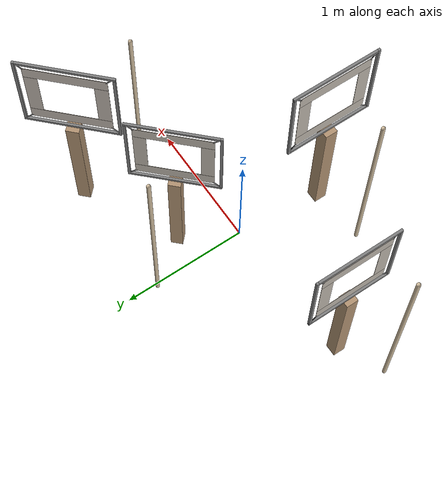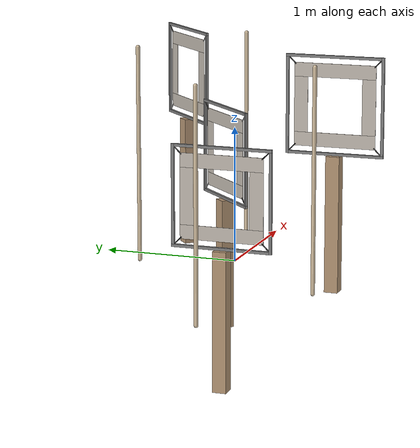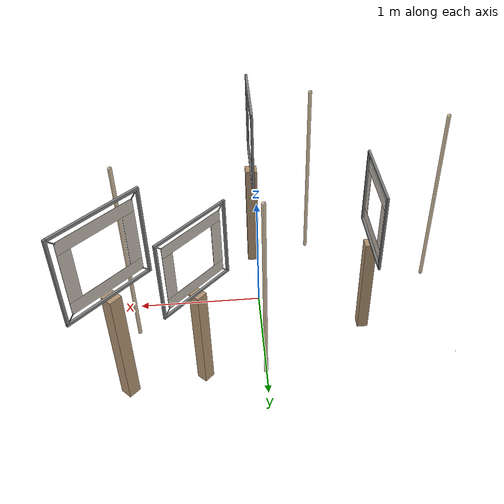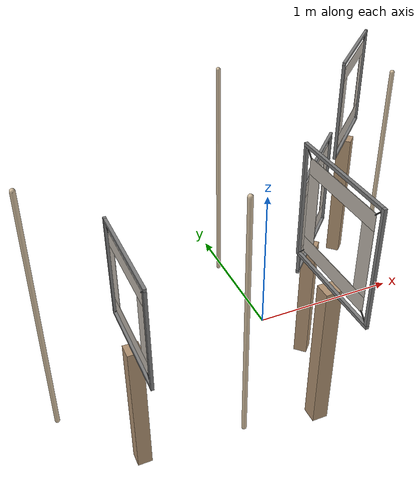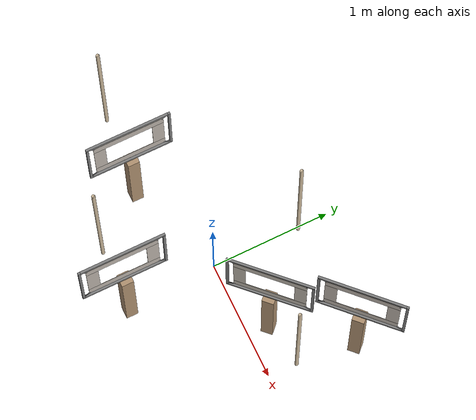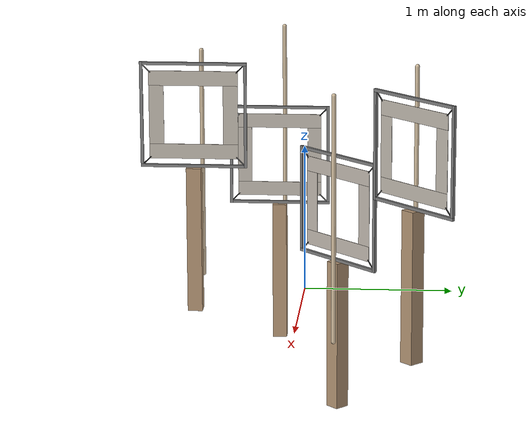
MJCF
<mujoco model="lsy-level0">
  <compiler angle="degree" />
  <asset>
    <texture name="gate_texture_top" type="2d" file="textures/gate_top.png" />
    <texture name="gate_texture_bottom" type="2d" file="textures/gate_bottom.png" />
    <texture name="gate_texture_left" type="2d" file="textures/gate_left.png" />
    <texture name="gate_texture_right" type="2d" file="textures/gate_right.png" />
    <material name="gate_mat_top" texture="gate_texture_top" specular="0.5" shininess="0.3" reflectance="0.0" emission="0.2" />
    <material name="gate_mat_bottom" texture="gate_texture_bottom" specular="0.5" shininess="0.3" reflectance="0.0" emission="0.2" />
    <material name="gate_mat_left" texture="gate_texture_left" specular="0.5" shininess="0.3" reflectance="0.0" emission="0.2" />
    <material name="gate_mat_right" texture="gate_texture_right" specular="0.5" shininess="0.3" reflectance="0.0" emission="0.2" />
    <material name="frame_mat" rgba="0.5 0.5 0.5 1" specular="0.4" shininess="0.4" reflectance="0.5" />
    <material name="rope_mat" rgba="0.1 0.1 0.1 1" specular="0.0" shininess="0.0" reflectance="0.0" />
    <material name="stand_mat" rgba="0.7 0.58 0.45 1" specular="0.0" shininess="0.0" reflectance="0.0" />
  </asset>
  <custom>
    <numeric name="gate_order" data="1 2 3 4 2" />
    <numeric name="reference_speed" data="0.5" />
    <numeric name="reference_spacing" data="0.3" />
    <numeric name="reference_detours" data="3 -1.3 -1.0 1.2 3 -0.55 -1.0 1.2" />
    <numeric name="world_low" data="-2.5 -1.5 -0.001" />
    <numeric name="world_high" data="2.5 1.5 2" />
    <numeric name="initial_velocity" data="0 0 0" />
    <numeric name="initial_angular_velocity" data="0 0 0" />
  </custom>
  <worldbody>
    <body name="gate:0" pos="0.5 0.25 0.69999999999999996" quat="0.92490905985731309 0 0 -0.38018841512316143" mocap="true">
      <geom name="front_top:0" type="box" size=".3 .05 5e-4" pos="-1e-3 0.0 0.25" euler="-90 -90 180" material="gate_mat_top" contype="0" conaffinity="0" />
      <geom name="front_bottom:0" type="box" size=".3 .05 5e-4" pos="-1e-3 0.0 -0.25" euler="-90 -90 180" material="gate_mat_bottom" contype="0" conaffinity="0" />
      <geom name="front_left:0" type="box" size=".05 .2 5e-4" pos="-1e-3 -0.25 0" euler="90 -90 180" material="gate_mat_left" contype="0" conaffinity="0" />
      <geom name="front_right:0" type="box" size=".05 .2 5e-4" pos="-1e-3 0.25 0" euler="90 -90 180" material="gate_mat_right" contype="0" conaffinity="0" />
      <geom name="back_top:0" type="box" size=".3 .05 5e-4" pos="1e-3 0.0 0.25" euler="90 90 0" material="gate_mat_top" contype="0" conaffinity="0" />
      <geom name="back_bottom:0" type="box" size=".3 .05 5e-4" pos="1e-3 0.0 -0.25" euler="90 90 0" material="gate_mat_bottom" contype="0" conaffinity="0" />
      <geom name="back_left:0" type="box" size=".05 .2 5e-4" pos="1e-3 -0.25 0" euler="90 90 0" material="gate_mat_left" contype="0" conaffinity="0" />
      <geom name="back_right:0" type="box" size=".05 .2 5e-4" pos="1e-3 0.25 0" euler="90 90 0" material="gate_mat_right" contype="0" conaffinity="0" />
      <geom name="frame_top:0" type="box" size=".35 .01 .01" pos="0.0 0.01 0.35" euler="90 90 0" material="frame_mat" contype="0" conaffinity="0" />
      <geom name="frame_bottom:0" type="box" size=".35 .01 .01" pos="0.0 -0.01 -0.35" euler="90 90 0" material="frame_mat" contype="0" conaffinity="0" />
      <geom name="frame_left:0" type="box" size=".01 .35 .01" pos="0.0 -0.35 0.01" euler="90 90 0" material="frame_mat" contype="0" conaffinity="0" />
      <geom name="frame_right:0" type="box" size=".01 .35 .01" pos="0.0 0.35 -0.01" euler="90 90 0" material="frame_mat" contype="0" conaffinity="0" />
      <geom name="rope_top_left:0" type="capsule" fromto="0.0 -0.34 0.34  0.0 -0.29 0.29" size="0.004" material="rope_mat" contype="0" conaffinity="0" />
      <geom name="rope_top_right:0" type="capsule" fromto="0.0 0.34 0.34   0.0 0.29 0.29" size="0.004" material="rope_mat" contype="0" conaffinity="0" />
      <geom name="rope_bottom_left:0" type="capsule" fromto="0.0 -0.34 -0.34  0.0 -0.29 -0.29" size="0.004" material="rope_mat" contype="0" conaffinity="0" />
      <geom name="rope_bottom_right:0" type="capsule" fromto="0.0 0.34 -0.34   0.0 0.29 -0.29" size="0.004" material="rope_mat" contype="0" conaffinity="0" />
      <geom name="gate_stand:0" type="box" size="0.05 0.05 0.5" pos="0 0 -0.86" material="stand_mat" contype="1" conaffinity="1" />
      <geom name="col_top:0" type="box" pos="0 0 0.28" size="0.01 0.36 0.08" rgba="1 1 1 0" contype="1" conaffinity="1" />
      <geom name="col_bottom:0" type="box" pos="0 0 -0.28" size="0.01 0.36 0.08" rgba="1 1 1 0" contype="1" conaffinity="1" />
      <geom name="col_left:0" type="box" pos="0 -0.28 0" size="0.01 0.08 0.36" rgba="1 1 1 0" contype="1" conaffinity="1" />
      <geom name="col_right:0" type="box" pos="0 0.28 0" size="0.01 0.08 0.36" rgba="1 1 1 0" contype="1" conaffinity="1" />
    </body>
    <body name="gate:1" pos="1.05 0.75 1.2" quat="0.38554307361593598 0 0 0.92268983867103305" mocap="true">
      <geom name="front_top:1" type="box" size=".3 .05 5e-4" pos="-1e-3 0.0 0.25" euler="-90 -90 180" material="gate_mat_top" contype="0" conaffinity="0" />
      <geom name="front_bottom:1" type="box" size=".3 .05 5e-4" pos="-1e-3 0.0 -0.25" euler="-90 -90 180" material="gate_mat_bottom" contype="0" conaffinity="0" />
      <geom name="front_left:1" type="box" size=".05 .2 5e-4" pos="-1e-3 -0.25 0" euler="90 -90 180" material="gate_mat_left" contype="0" conaffinity="0" />
      <geom name="front_right:1" type="box" size=".05 .2 5e-4" pos="-1e-3 0.25 0" euler="90 -90 180" material="gate_mat_right" contype="0" conaffinity="0" />
      <geom name="back_top:1" type="box" size=".3 .05 5e-4" pos="1e-3 0.0 0.25" euler="90 90 0" material="gate_mat_top" contype="0" conaffinity="0" />
      <geom name="back_bottom:1" type="box" size=".3 .05 5e-4" pos="1e-3 0.0 -0.25" euler="90 90 0" material="gate_mat_bottom" contype="0" conaffinity="0" />
      <geom name="back_left:1" type="box" size=".05 .2 5e-4" pos="1e-3 -0.25 0" euler="90 90 0" material="gate_mat_left" contype="0" conaffinity="0" />
      <geom name="back_right:1" type="box" size=".05 .2 5e-4" pos="1e-3 0.25 0" euler="90 90 0" material="gate_mat_right" contype="0" conaffinity="0" />
      <geom name="frame_top:1" type="box" size=".35 .01 .01" pos="0.0 0.01 0.35" euler="90 90 0" material="frame_mat" contype="0" conaffinity="0" />
      <geom name="frame_bottom:1" type="box" size=".35 .01 .01" pos="0.0 -0.01 -0.35" euler="90 90 0" material="frame_mat" contype="0" conaffinity="0" />
      <geom name="frame_left:1" type="box" size=".01 .35 .01" pos="0.0 -0.35 0.01" euler="90 90 0" material="frame_mat" contype="0" conaffinity="0" />
      <geom name="frame_right:1" type="box" size=".01 .35 .01" pos="0.0 0.35 -0.01" euler="90 90 0" material="frame_mat" contype="0" conaffinity="0" />
      <geom name="rope_top_left:1" type="capsule" fromto="0.0 -0.34 0.34  0.0 -0.29 0.29" size="0.004" material="rope_mat" contype="0" conaffinity="0" />
      <geom name="rope_top_right:1" type="capsule" fromto="0.0 0.34 0.34   0.0 0.29 0.29" size="0.004" material="rope_mat" contype="0" conaffinity="0" />
      <geom name="rope_bottom_left:1" type="capsule" fromto="0.0 -0.34 -0.34  0.0 -0.29 -0.29" size="0.004" material="rope_mat" contype="0" conaffinity="0" />
      <geom name="rope_bottom_right:1" type="capsule" fromto="0.0 0.34 -0.34   0.0 0.29 -0.29" size="0.004" material="rope_mat" contype="0" conaffinity="0" />
      <geom name="gate_stand:1" type="box" size="0.05 0.05 0.5" pos="0 0 -0.86" material="stand_mat" contype="1" conaffinity="1" />
      <geom name="col_top:1" type="box" pos="0 0 0.28" size="0.01 0.36 0.08" rgba="1 1 1 0" contype="1" conaffinity="1" />
      <geom name="col_bottom:1" type="box" pos="0 0 -0.28" size="0.01 0.36 0.08" rgba="1 1 1 0" contype="1" conaffinity="1" />
      <geom name="col_left:1" type="box" pos="0 -0.28 0" size="0.01 0.08 0.36" rgba="1 1 1 0" contype="1" conaffinity="1" />
      <geom name="col_right:1" type="box" pos="0 0.28 0" size="0.01 0.08 0.36" rgba="1 1 1 0" contype="1" conaffinity="1" />
    </body>
    <body name="gate:2" pos="-1 -0.25 0.69999999999999996" quat="0.00079632671073326335 0 0 0.99999968293183461" mocap="true">
      <geom name="front_top:2" type="box" size=".3 .05 5e-4" pos="-1e-3 0.0 0.25" euler="-90 -90 180" material="gate_mat_top" contype="0" conaffinity="0" />
      <geom name="front_bottom:2" type="box" size=".3 .05 5e-4" pos="-1e-3 0.0 -0.25" euler="-90 -90 180" material="gate_mat_bottom" contype="0" conaffinity="0" />
      <geom name="front_left:2" type="box" size=".05 .2 5e-4" pos="-1e-3 -0.25 0" euler="90 -90 180" material="gate_mat_left" contype="0" conaffinity="0" />
      <geom name="front_right:2" type="box" size=".05 .2 5e-4" pos="-1e-3 0.25 0" euler="90 -90 180" material="gate_mat_right" contype="0" conaffinity="0" />
      <geom name="back_top:2" type="box" size=".3 .05 5e-4" pos="1e-3 0.0 0.25" euler="90 90 0" material="gate_mat_top" contype="0" conaffinity="0" />
      <geom name="back_bottom:2" type="box" size=".3 .05 5e-4" pos="1e-3 0.0 -0.25" euler="90 90 0" material="gate_mat_bottom" contype="0" conaffinity="0" />
      <geom name="back_left:2" type="box" size=".05 .2 5e-4" pos="1e-3 -0.25 0" euler="90 90 0" material="gate_mat_left" contype="0" conaffinity="0" />
      <geom name="back_right:2" type="box" size=".05 .2 5e-4" pos="1e-3 0.25 0" euler="90 90 0" material="gate_mat_right" contype="0" conaffinity="0" />
      <geom name="frame_top:2" type="box" size=".35 .01 .01" pos="0.0 0.01 0.35" euler="90 90 0" material="frame_mat" contype="0" conaffinity="0" />
      <geom name="frame_bottom:2" type="box" size=".35 .01 .01" pos="0.0 -0.01 -0.35" euler="90 90 0" material="frame_mat" contype="0" conaffinity="0" />
      <geom name="frame_left:2" type="box" size=".01 .35 .01" pos="0.0 -0.35 0.01" euler="90 90 0" material="frame_mat" contype="0" conaffinity="0" />
      <geom name="frame_right:2" type="box" size=".01 .35 .01" pos="0.0 0.35 -0.01" euler="90 90 0" material="frame_mat" contype="0" conaffinity="0" />
      <geom name="rope_top_left:2" type="capsule" fromto="0.0 -0.34 0.34  0.0 -0.29 0.29" size="0.004" material="rope_mat" contype="0" conaffinity="0" />
      <geom name="rope_top_right:2" type="capsule" fromto="0.0 0.34 0.34   0.0 0.29 0.29" size="0.004" material="rope_mat" contype="0" conaffinity="0" />
      <geom name="rope_bottom_left:2" type="capsule" fromto="0.0 -0.34 -0.34  0.0 -0.29 -0.29" size="0.004" material="rope_mat" contype="0" conaffinity="0" />
      <geom name="rope_bottom_right:2" type="capsule" fromto="0.0 0.34 -0.34   0.0 0.29 -0.29" size="0.004" material="rope_mat" contype="0" conaffinity="0" />
      <geom name="gate_stand:2" type="box" size="0.05 0.05 0.5" pos="0 0 -0.86" material="stand_mat" contype="1" conaffinity="1" />
      <geom name="col_top:2" type="box" pos="0 0 0.28" size="0.01 0.36 0.08" rgba="1 1 1 0" contype="1" conaffinity="1" />
      <geom name="col_bottom:2" type="box" pos="0 0 -0.28" size="0.01 0.36 0.08" rgba="1 1 1 0" contype="1" conaffinity="1" />
      <geom name="col_left:2" type="box" pos="0 -0.28 0" size="0.01 0.08 0.36" rgba="1 1 1 0" contype="1" conaffinity="1" />
      <geom name="col_right:2" type="box" pos="0 0.28 0" size="0.01 0.08 0.36" rgba="1 1 1 0" contype="1" conaffinity="1" />
    </body>
    <body name="gate:3" pos="0 -0.75 1.2" quat="1 0 0 0" mocap="true">
      <geom name="front_top:3" type="box" size=".3 .05 5e-4" pos="-1e-3 0.0 0.25" euler="-90 -90 180" material="gate_mat_top" contype="0" conaffinity="0" />
      <geom name="front_bottom:3" type="box" size=".3 .05 5e-4" pos="-1e-3 0.0 -0.25" euler="-90 -90 180" material="gate_mat_bottom" contype="0" conaffinity="0" />
      <geom name="front_left:3" type="box" size=".05 .2 5e-4" pos="-1e-3 -0.25 0" euler="90 -90 180" material="gate_mat_left" contype="0" conaffinity="0" />
      <geom name="front_right:3" type="box" size=".05 .2 5e-4" pos="-1e-3 0.25 0" euler="90 -90 180" material="gate_mat_right" contype="0" conaffinity="0" />
      <geom name="back_top:3" type="box" size=".3 .05 5e-4" pos="1e-3 0.0 0.25" euler="90 90 0" material="gate_mat_top" contype="0" conaffinity="0" />
      <geom name="back_bottom:3" type="box" size=".3 .05 5e-4" pos="1e-3 0.0 -0.25" euler="90 90 0" material="gate_mat_bottom" contype="0" conaffinity="0" />
      <geom name="back_left:3" type="box" size=".05 .2 5e-4" pos="1e-3 -0.25 0" euler="90 90 0" material="gate_mat_left" contype="0" conaffinity="0" />
      <geom name="back_right:3" type="box" size=".05 .2 5e-4" pos="1e-3 0.25 0" euler="90 90 0" material="gate_mat_right" contype="0" conaffinity="0" />
      <geom name="frame_top:3" type="box" size=".35 .01 .01" pos="0.0 0.01 0.35" euler="90 90 0" material="frame_mat" contype="0" conaffinity="0" />
      <geom name="frame_bottom:3" type="box" size=".35 .01 .01" pos="0.0 -0.01 -0.35" euler="90 90 0" material="frame_mat" contype="0" conaffinity="0" />
      <geom name="frame_left:3" type="box" size=".01 .35 .01" pos="0.0 -0.35 0.01" euler="90 90 0" material="frame_mat" contype="0" conaffinity="0" />
      <geom name="frame_right:3" type="box" size=".01 .35 .01" pos="0.0 0.35 -0.01" euler="90 90 0" material="frame_mat" contype="0" conaffinity="0" />
      <geom name="rope_top_left:3" type="capsule" fromto="0.0 -0.34 0.34  0.0 -0.29 0.29" size="0.004" material="rope_mat" contype="0" conaffinity="0" />
      <geom name="rope_top_right:3" type="capsule" fromto="0.0 0.34 0.34   0.0 0.29 0.29" size="0.004" material="rope_mat" contype="0" conaffinity="0" />
      <geom name="rope_bottom_left:3" type="capsule" fromto="0.0 -0.34 -0.34  0.0 -0.29 -0.29" size="0.004" material="rope_mat" contype="0" conaffinity="0" />
      <geom name="rope_bottom_right:3" type="capsule" fromto="0.0 0.34 -0.34   0.0 0.29 -0.29" size="0.004" material="rope_mat" contype="0" conaffinity="0" />
      <geom name="gate_stand:3" type="box" size="0.05 0.05 0.5" pos="0 0 -0.86" material="stand_mat" contype="1" conaffinity="1" />
      <geom name="col_top:3" type="box" pos="0 0 0.28" size="0.01 0.36 0.08" rgba="1 1 1 0" contype="1" conaffinity="1" />
      <geom name="col_bottom:3" type="box" pos="0 0 -0.28" size="0.01 0.36 0.08" rgba="1 1 1 0" contype="1" conaffinity="1" />
      <geom name="col_left:3" type="box" pos="0 -0.28 0" size="0.01 0.08 0.36" rgba="1 1 1 0" contype="1" conaffinity="1" />
      <geom name="col_right:3" type="box" pos="0 0.28 0" size="0.01 0.08 0.36" rgba="1 1 1 0" contype="1" conaffinity="1" />
    </body>
    <body name="obstacle:0" pos="0 0.75 1.55" quat="1 0 0 0" mocap="true">
      <geom name="obstacle:0" type="capsule" size="0.015 0.8" pos="0 0 -0.8" rgba="0.83 0.75 0.63 1" />
    </body>
    <body name="obstacle:1" pos="1 0.25 1.55" quat="1 0 0 0" mocap="true">
      <geom name="obstacle:1" type="capsule" size="0.015 0.8" pos="0 0 -0.8" rgba="0.83 0.75 0.63 1" />
    </body>
    <body name="obstacle:2" pos="-1.5 -0.25 1.55" quat="1 0 0 0" mocap="true">
      <geom name="obstacle:2" type="capsule" size="0.015 0.8" pos="0 0 -0.8" rgba="0.83 0.75 0.63 1" />
    </body>
    <body name="obstacle:3" pos="-0.5 -0.75 1.55" quat="1 0 0 0" mocap="true">
      <geom name="obstacle:3" type="capsule" size="0.015 0.8" pos="0 0 -0.8" rgba="0.83 0.75 0.63 1" />
    </body>
    <site name="drone_start" pos="-1.5 0.75 0.01" quat="1 0 0 0" size="0.001" />
  </worldbody>
</mujoco>
